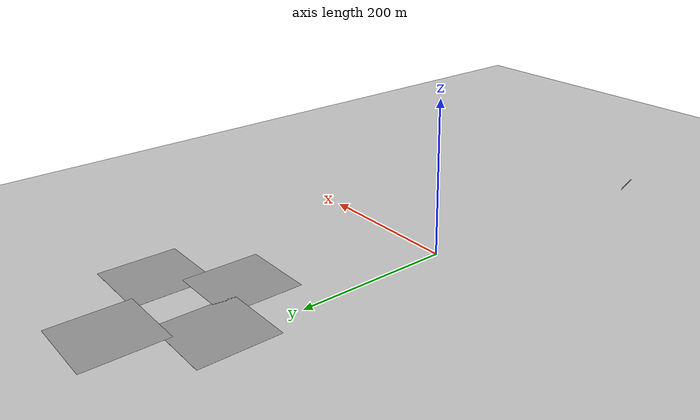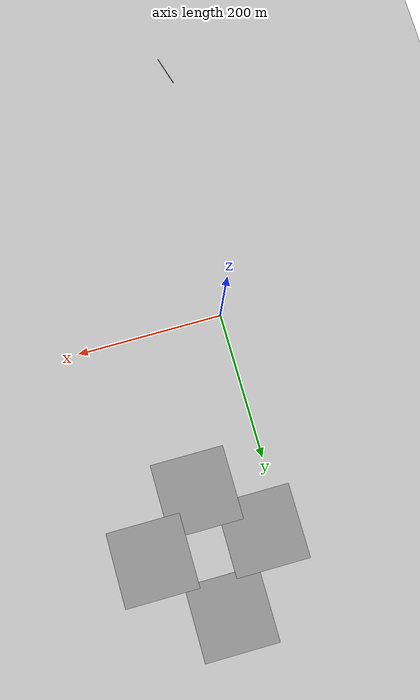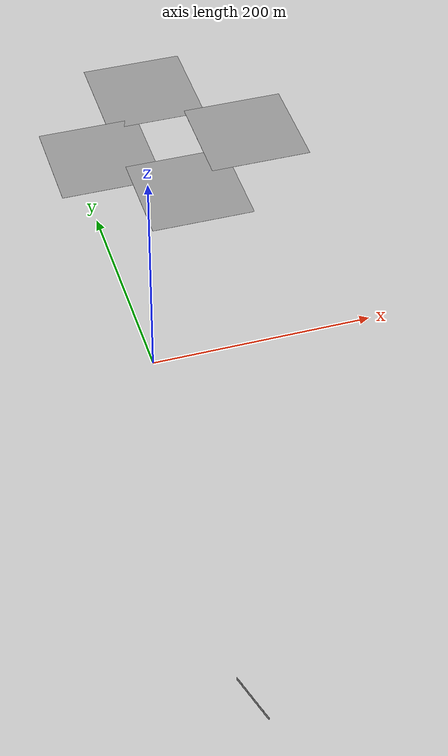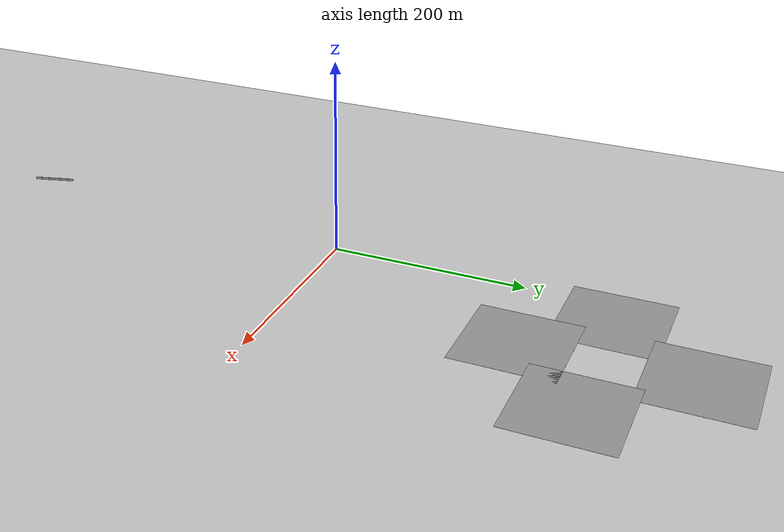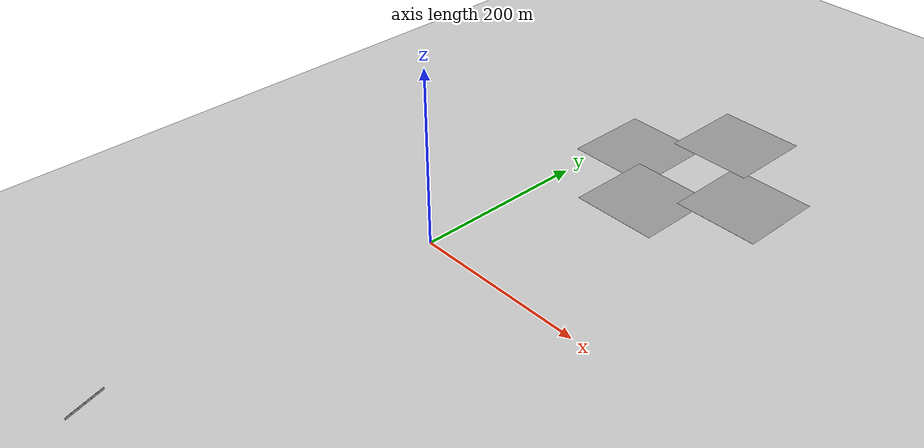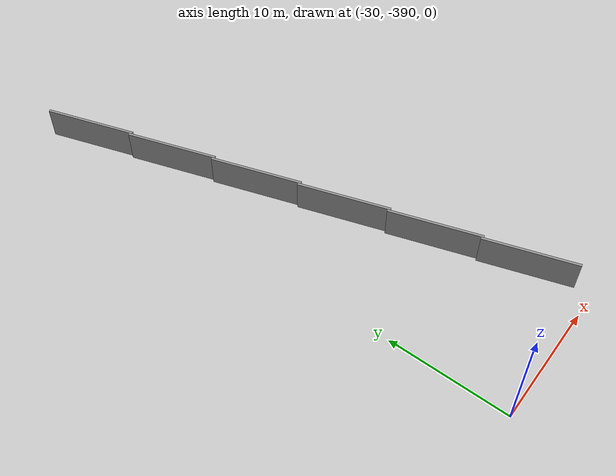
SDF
<sdf version="1.6">
 <world name="default">
  <light name="sun" type="directional">
   <pose>0 0 10 0 -0 0</pose>
   <diffuse>0.8 0.8 0.8 1</diffuse>
   <specular>0.2 0.2 0.2 1</specular>
   <attenuation>
    <range>1000</range>
    <constant>0.9</constant>
    <linear>0.01</linear>
    <quadratic>0.001</quadratic>
   </attenuation>
   <direction>-0.5 0.1 -0.9</direction>
  </light>
  <gravity>0 0 -9.8</gravity>
  <magnetic_field>6e-06 2.3e-05 -4.2e-05</magnetic_field>
  <atmosphere type="adiabatic"/>
  <physics name="default_physics" default="0" type="ode">
   <max_step_size>0.001</max_step_size>
   <real_time_factor>1</real_time_factor>
   <real_time_update_rate>1000</real_time_update_rate>
  </physics>
  <scene><ambient>0.4 0.4 0.4 1</ambient><background>0.7 0.7 0.7 1</background><shadows>1</shadows></scene>
  <audio><device>default</device></audio>
  <spherical_coordinates>
   <surface_model>EARTH_WGS84</surface_model>
   <latitude_deg>0</latitude_deg>
   <longitude_deg>0</longitude_deg>
   <elevation>0</elevation>
   <heading_deg>0</heading_deg>
  </spherical_coordinates>
  <model name="grey_wall">
   <static>1</static>
   <link name="link">
    <pose>0 0 1.4 0 -0 0</pose>
    <collision name="collision"><geometry><box><size>7.5 0.2 2.8</size></box></geometry></collision>
    <visual name="visual">
     <cast_shadows>0</cast_shadows>
     <geometry><box><size>7.5 0.2 2.8</size></box></geometry>
     <material>
      <script>
       <uri>model://grey_wall/materials/scripts</uri>
       <uri>model://grey_wall/materials/textures</uri>
       <name>vrc/grey_wall</name>
      </script>
     </material>
    </visual>
   </link>
   <pose>-29 -350 0 0 -0 1.87601</pose>
  </model>
  <model name="grey_wall_clone">
   <static>1</static>
   <link name="link">
    <pose>0 0 1.4 0 -0 0</pose>
    <collision name="collision"><geometry><box><size>7.5 0.2 2.8</size></box></geometry></collision>
    <visual name="visual">
     <cast_shadows>0</cast_shadows>
     <geometry><box><size>7.5 0.2 2.8</size></box></geometry>
     <material>
      <script>
       <uri>model://grey_wall/materials/scripts</uri>
       <uri>model://grey_wall/materials/textures</uri>
       <name>vrc/grey_wall</name>
      </script>
     </material>
    </visual>
   </link>
   <pose>-27 -357 0 0 -0 1.87601</pose>
  </model>
  <model name="grey_wall_clone_0">
   <static>1</static>
   <link name="link">
    <pose>0 0 1.4 0 -0 0</pose>
    <collision name="collision"><geometry><box><size>7.5 0.2 2.8</size></box></geometry></collision>
    <visual name="visual">
     <cast_shadows>0</cast_shadows>
     <geometry><box><size>7.5 0.2 2.8</size></box></geometry>
     <material>
      <script>
       <uri>model://grey_wall/materials/scripts</uri>
       <uri>model://grey_wall/materials/textures</uri>
       <name>vrc/grey_wall</name>
      </script>
     </material>
    </visual>
   </link>
   <pose>-25 -364 0 0 -0 1.87601</pose>
  </model>
  <model name="grey_wall_clone_0_clone">
   <static>1</static>
   <link name="link">
    <pose>0 0 1.4 0 -0 0</pose>
    <collision name="collision"><geometry><box><size>7.5 0.2 2.8</size></box></geometry></collision>
    <visual name="visual">
     <cast_shadows>0</cast_shadows>
     <geometry><box><size>7.5 0.2 2.8</size></box></geometry>
     <material>
      <script>
       <uri>model://grey_wall/materials/scripts</uri>
       <uri>model://grey_wall/materials/textures</uri>
       <name>vrc/grey_wall</name>
      </script>
     </material>
    </visual>
   </link>
   <pose>-23 -371 0 0 -0 1.87601</pose>
  </model>
  <model name="grey_wall_clone_0_clone_clone">
   <static>1</static>
   <link name="link">
    <pose>0 0 1.4 0 -0 0</pose>
    <collision name="collision"><geometry><box><size>7.5 0.2 2.8</size></box></geometry></collision>
    <visual name="visual">
     <cast_shadows>0</cast_shadows>
     <geometry><box><size>7.5 0.2 2.8</size></box></geometry>
     <material>
      <script>
       <uri>model://grey_wall/materials/scripts</uri>
       <uri>model://grey_wall/materials/textures</uri>
       <name>vrc/grey_wall</name>
      </script>
     </material>
    </visual>
   </link>
   <pose>-21 -378 0 0 -0 1.87601</pose>
  </model>
  <model name="grey_wall_clone_0_clone_clone_clone">
   <static>1</static>
   <link name="link">
    <pose>0 0 1.4 0 -0 0</pose>
    <collision name="collision"><geometry><box><size>7.5 0.2 2.8</size></box></geometry></collision>
    <visual name="visual">
     <cast_shadows>0</cast_shadows>
     <geometry><box><size>7.5 0.2 2.8</size></box></geometry>
     <material>
      <script>
       <uri>model://grey_wall/materials/scripts</uri>
       <uri>model://grey_wall/materials/textures</uri>
       <name>vrc/grey_wall</name>
      </script>
     </material>
    </visual>
   </link>
   <pose>-19 -385 0 0 -0 1.87601</pose>
  </model>
  <model name="ground_plane">
   <static>1</static>
   <link name="link">
    <collision name="collision">
     <geometry><plane><normal>0 0 1</normal><size>100 100</size></plane></geometry>
     <surface>
      <contact><collide_bitmask>65535</collide_bitmask></contact>
      <friction><ode><mu>100</mu><mu2>50</mu2></ode></friction>
     </surface>
    </collision>
    <visual name="visual">
     <cast_shadows>0</cast_shadows>
     <geometry><plane><normal>0 0 1</normal><size>100 100</size></plane></geometry>
     <material>
      <script><uri>file://media/materials/scripts/gazebo.material</uri><name>Gazebo/Grey</name></script>
     </material>
    </visual>
   </link>
   <pose>95.2601 291.372 0 0 -0 0</pose>
  </model>
  <model name="ground_plane_0">
   <static>1</static>
   <link name="link">
    <collision name="collision">
     <geometry><plane><normal>0 0 1</normal><size>100 100</size></plane></geometry>
     <surface>
      <contact><collide_bitmask>65535</collide_bitmask></contact>
      <friction><ode><mu>100</mu><mu2>50</mu2></ode></friction>
     </surface>
    </collision>
    <visual name="visual">
     <cast_shadows>0</cast_shadows>
     <geometry><plane><normal>0 0 1</normal><size>100 100</size></plane></geometry>
     <material>
      <script><uri>file://media/materials/scripts/gazebo.material</uri><name>Gazebo/Grey</name></script>
     </material>
    </visual>
   </link>
   <pose>94.7896 382.756 0 0 -0 0</pose>
  </model>
  <model name="ground_plane_1">
   <static>1</static>
   <link name="link">
    <collision name="collision">
     <geometry><plane><normal>0 0 1</normal><size>100 100</size></plane></geometry>
     <surface>
      <contact><collide_bitmask>65535</collide_bitmask></contact>
      <friction><ode><mu>100</mu><mu2>50</mu2></ode></friction>
     </surface>
    </collision>
    <visual name="visual">
     <cast_shadows>0</cast_shadows>
     <geometry><plane><normal>0 0 1</normal><size>100 100</size></plane></geometry>
     <material>
      <script><uri>file://media/materials/scripts/gazebo.material</uri><name>Gazebo/Grey</name></script>
     </material>
    </visual>
   </link>
   <pose>96.3231 220.507 0 0 -0 0</pose>
  </model>
  <model name="ground_plane_2">
   <static>1</static>
   <link name="link">
    <collision name="collision">
     <geometry><plane><normal>0 0 1</normal><size>100 100</size></plane></geometry>
     <surface>
      <contact><collide_bitmask>65535</collide_bitmask></contact>
      <friction><ode><mu>100</mu><mu2>50</mu2></ode></friction>
     </surface>
    </collision>
    <visual name="visual">
     <cast_shadows>0</cast_shadows>
     <geometry><plane><normal>0 0 1</normal><size>100 100</size></plane></geometry>
     <material>
      <script><uri>file://media/materials/scripts/gazebo.material</uri><name>Gazebo/Grey</name></script>
     </material>
    </visual>
   </link>
   <pose>175.465 290.522 0 0 -0 0</pose>
  </model>
  <model name="ground_plane_3">
   <static>1</static>
   <link name="link">
    <collision name="collision">
     <geometry><plane><normal>0 0 1</normal><size>100 100</size></plane></geometry>
     <surface>
      <contact><collide_bitmask>65535</collide_bitmask></contact>
      <friction><ode><mu>100</mu><mu2>50</mu2></ode></friction>
     </surface>
    </collision>
    <visual name="visual">
     <cast_shadows>0</cast_shadows>
     <geometry><plane><normal>0 0 1</normal><size>100 100</size></plane></geometry>
     <material>
      <script><uri>file://media/materials/scripts/gazebo.material</uri><name>Gazebo/Grey</name></script>
     </material>
    </visual>
   </link>
   <pose>26.4568 291.732 0 0 -0 0</pose>
  </model>
 </world>
</sdf>
